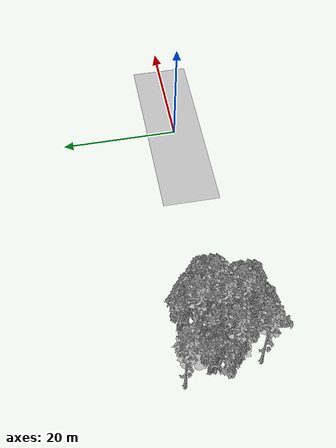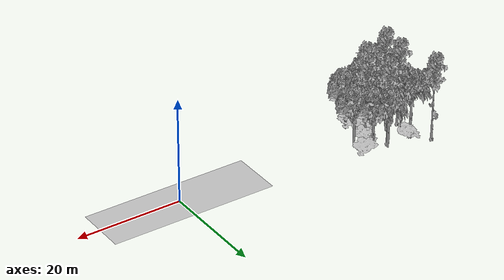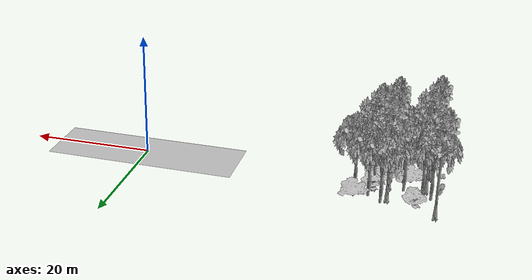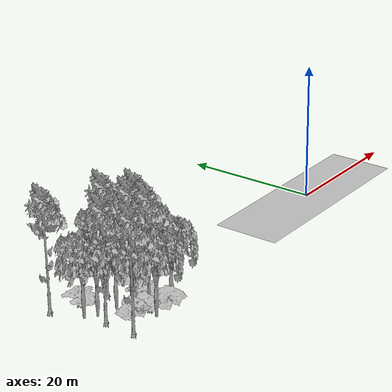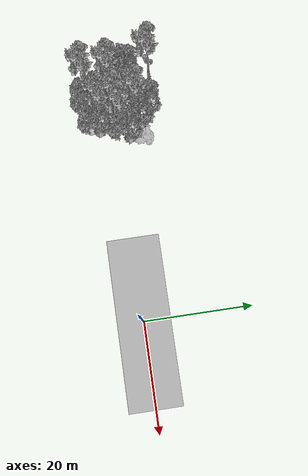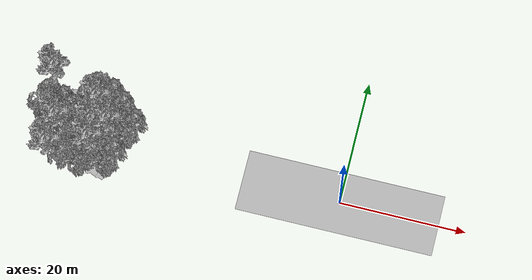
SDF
<sdf version="1.7">
 <world name="default">
  <model name="ground_plane">
   <static>1</static>
   <link name="link">
    <collision name="collision">
     <pose>-50 0 0 0 -0 0</pose>
     <geometry><plane><normal>0 0 1</normal><size>100 100</size></plane></geometry>
     <surface><contact><ode><min_depth>0.01</min_depth><max_vel>0</max_vel></ode></contact></surface>
    </collision>
    <visual name="grass">
     <cast_shadows>0</cast_shadows>
     <geometry>
      <mesh>
       <scale>0.5814285714285714 0.18142857142857144 0.1</scale>
       <uri>file://grass_plane/meshes/grass_plane.dae</uri>
      </mesh>
     </geometry>
    </visual>
   </link>
  </model>
  <model name="Tree 28">
   <static>1</static>
   <pose>-39.8316958068525 -2.0770529206406376 0 1.57079 -0 0</pose>
   <link name="link">
    <collision name="collision">
     <geometry><mesh><scale>3.5 5 3.5</scale><uri>model://tree_9/meshes/tree_9.obj</uri></mesh></geometry>
    </collision>
    <visual name="visual">
     <geometry><mesh><scale>3.5 5 3.5</scale><uri>model://tree_9/meshes/tree_9.obj</uri></mesh></geometry>
    </visual>
   </link>
  </model>
  <model name="Tree 32">
   <static>1</static>
   <pose>-39.52098686057385 5.791457068551935 0 1.57079 -0 0</pose>
   <link name="link">
    <collision name="collision">
     <geometry><mesh><scale>3.5 5 3.5</scale><uri>model://tree_2/meshes/tree_2.obj</uri></mesh></geometry>
    </collision>
    <visual name="visual">
     <geometry><mesh><scale>3.5 5 3.5</scale><uri>model://tree_2/meshes/tree_2.obj</uri></mesh></geometry>
    </visual>
   </link>
  </model>
  <model name="Tree 34">
   <static>1</static>
   <pose>-38.68039824063031 -0.27357274406901766 0 1.57079 -0 0</pose>
   <link name="link">
    <collision name="collision">
     <geometry><mesh><scale>4 2.5 4</scale><uri>model://tree_1/meshes/tree_1.obj</uri></mesh></geometry>
    </collision>
    <visual name="visual">
     <geometry><mesh><scale>4 2.5 4</scale><uri>model://tree_1/meshes/tree_1.obj</uri></mesh></geometry>
    </visual>
   </link>
  </model>
  <model name="Tree 48">
   <static>1</static>
   <pose>-41.523189170857854 -2.5307352694924248 0 1.57079 -0 0</pose>
   <link name="link">
    <collision name="collision">
     <geometry><mesh><scale>3 2 3</scale><uri>model://tree_3/meshes/tree_3.obj</uri></mesh></geometry>
    </collision>
    <visual name="visual">
     <geometry><mesh><scale>3 2 3</scale><uri>model://tree_3/meshes/tree_3.obj</uri></mesh></geometry>
    </visual>
   </link>
  </model>
  <model name="Tree 70">
   <static>1</static>
   <pose>-37.45991694902705 4.196705679151307 0 1.57079 -0 0</pose>
   <link name="link">
    <collision name="collision">
     <geometry><mesh><scale>3.5 5 3.5</scale><uri>model://tree_2/meshes/tree_2.obj</uri></mesh></geometry>
    </collision>
    <visual name="visual">
     <geometry><mesh><scale>3.5 5 3.5</scale><uri>model://tree_2/meshes/tree_2.obj</uri></mesh></geometry>
    </visual>
   </link>
  </model>
  <model name="Tree 91">
   <static>1</static>
   <pose>-35.03655641516617 1.8498984055786778 0 1.57079 -0 0</pose>
   <link name="link">
    <collision name="collision">
     <geometry><mesh><scale>3.5 5 3.5</scale><uri>model://tree_2/meshes/tree_2.obj</uri></mesh></geometry>
    </collision>
    <visual name="visual">
     <geometry><mesh><scale>3.5 5 3.5</scale><uri>model://tree_2/meshes/tree_2.obj</uri></mesh></geometry>
    </visual>
   </link>
  </model>
  <model name="Tree 131">
   <static>1</static>
   <pose>-37.80168769161449 1.315296811936868 0 1.57079 -0 0</pose>
   <link name="link">
    <collision name="collision">
     <geometry><mesh><scale>3.5 5 3.5</scale><uri>model://tree_9/meshes/tree_9.obj</uri></mesh></geometry>
    </collision>
    <visual name="visual">
     <geometry><mesh><scale>3.5 5 3.5</scale><uri>model://tree_9/meshes/tree_9.obj</uri></mesh></geometry>
    </visual>
   </link>
  </model>
  <model name="Tree 133">
   <static>1</static>
   <pose>-37.78619866772434 1.6802579844869179 0 1.57079 -0 0</pose>
   <link name="link">
    <collision name="collision">
     <geometry><mesh><scale>4 2.5 4</scale><uri>model://tree_1/meshes/tree_1.obj</uri></mesh></geometry>
    </collision>
    <visual name="visual">
     <geometry><mesh><scale>4 2.5 4</scale><uri>model://tree_1/meshes/tree_1.obj</uri></mesh></geometry>
    </visual>
   </link>
  </model>
  <model name="Tree 161">
   <static>1</static>
   <pose>-40.03351332505194 0.6126875188362586 0 1.57079 -0 0</pose>
   <link name="link">
    <collision name="collision">
     <geometry><mesh><scale>3.5 5 3.5</scale><uri>model://tree_9/meshes/tree_9.obj</uri></mesh></geometry>
    </collision>
    <visual name="visual">
     <geometry><mesh><scale>3.5 5 3.5</scale><uri>model://tree_9/meshes/tree_9.obj</uri></mesh></geometry>
    </visual>
   </link>
  </model>
  <model name="Tree 181">
   <static>1</static>
   <pose>-45.63508047353047 0.17504762835524978 0 1.57079 -0 0</pose>
   <link name="link">
    <collision name="collision">
     <geometry><mesh><scale>3.5 5 3.5</scale><uri>model://tree_9/meshes/tree_9.obj</uri></mesh></geometry>
    </collision>
    <visual name="visual">
     <geometry><mesh><scale>3.5 5 3.5</scale><uri>model://tree_9/meshes/tree_9.obj</uri></mesh></geometry>
    </visual>
   </link>
  </model>
  <model name="Tree 194">
   <static>1</static>
   <pose>-45.31039754584546 1.7979524649669614 0 1.57079 -0 0</pose>
   <link name="link">
    <collision name="collision">
     <geometry><mesh><scale>3.5 5 3.5</scale><uri>model://tree_2/meshes/tree_2.obj</uri></mesh></geometry>
    </collision>
    <visual name="visual">
     <geometry><mesh><scale>3.5 5 3.5</scale><uri>model://tree_2/meshes/tree_2.obj</uri></mesh></geometry>
    </visual>
   </link>
  </model>
  <model name="Tree 201">
   <static>1</static>
   <pose>-40.227225672328906 4.487821520263605 0 1.57079 -0 0</pose>
   <link name="link">
    <collision name="collision">
     <geometry><mesh><scale>3.5 5 3.5</scale><uri>model://tree_9/meshes/tree_9.obj</uri></mesh></geometry>
    </collision>
    <visual name="visual">
     <geometry><mesh><scale>3.5 5 3.5</scale><uri>model://tree_9/meshes/tree_9.obj</uri></mesh></geometry>
    </visual>
   </link>
  </model>
  <model name="Tree 202">
   <static>1</static>
   <pose>-41.15054442785672 -4.18944300722249 0 1.57079 -0 0</pose>
   <link name="link">
    <collision name="collision">
     <geometry><mesh><scale>3.5 5 3.5</scale><uri>model://tree_2/meshes/tree_2.obj</uri></mesh></geometry>
    </collision>
    <visual name="visual">
     <geometry><mesh><scale>3.5 5 3.5</scale><uri>model://tree_2/meshes/tree_2.obj</uri></mesh></geometry>
    </visual>
   </link>
  </model>
  <model name="Tree 358">
   <static>1</static>
   <pose>-44.5224142309047 5.303659520229299 0 1.57079 -0 0</pose>
   <link name="link">
    <collision name="collision">
     <geometry><mesh><scale>4 2.5 4</scale><uri>model://tree_1/meshes/tree_1.obj</uri></mesh></geometry>
    </collision>
    <visual name="visual">
     <geometry><mesh><scale>4 2.5 4</scale><uri>model://tree_1/meshes/tree_1.obj</uri></mesh></geometry>
    </visual>
   </link>
  </model>
  <model name="Tree 397">
   <static>1</static>
   <pose>-43.04464934743676 -2.095648748263045 0 1.57079 -0 0</pose>
   <link name="link">
    <collision name="collision">
     <geometry><mesh><scale>3 2 3</scale><uri>model://tree_3/meshes/tree_3.obj</uri></mesh></geometry>
    </collision>
    <visual name="visual">
     <geometry><mesh><scale>3 2 3</scale><uri>model://tree_3/meshes/tree_3.obj</uri></mesh></geometry>
    </visual>
   </link>
  </model>
  <model name="Tree 400">
   <static>1</static>
   <pose>-46.679869658411356 2.8533812270009378 0 1.57079 -0 0</pose>
   <link name="link">
    <collision name="collision">
     <geometry><mesh><scale>3.5 5 3.5</scale><uri>model://tree_2/meshes/tree_2.obj</uri></mesh></geometry>
    </collision>
    <visual name="visual">
     <geometry><mesh><scale>3.5 5 3.5</scale><uri>model://tree_2/meshes/tree_2.obj</uri></mesh></geometry>
    </visual>
   </link>
  </model>
  <model name="Tree 401">
   <static>1</static>
   <pose>-36.94971651201166 -3.3201957891886895 0 1.57079 -0 0</pose>
   <link name="link">
    <collision name="collision">
     <geometry><mesh><scale>3.5 5 3.5</scale><uri>model://tree_2/meshes/tree_2.obj</uri></mesh></geometry>
    </collision>
    <visual name="visual">
     <geometry><mesh><scale>3.5 5 3.5</scale><uri>model://tree_2/meshes/tree_2.obj</uri></mesh></geometry>
    </visual>
   </link>
  </model>
  <model name="Tree 419">
   <static>1</static>
   <pose>-45.78433155488902 -4.307275897563727 0 1.57079 -0 0</pose>
   <link name="link">
    <collision name="collision">
     <geometry><mesh><scale>3.5 5 3.5</scale><uri>model://tree_9/meshes/tree_9.obj</uri></mesh></geometry>
    </collision>
    <visual name="visual">
     <geometry><mesh><scale>3.5 5 3.5</scale><uri>model://tree_9/meshes/tree_9.obj</uri></mesh></geometry>
    </visual>
   </link>
  </model>
  <model name="Tree 467">
   <static>1</static>
   <pose>-35.20399750912631 4.7608589076049626 0 1.57079 -0 0</pose>
   <link name="link">
    <collision name="collision">
     <geometry><mesh><scale>3 2 3</scale><uri>model://tree_3/meshes/tree_3.obj</uri></mesh></geometry>
    </collision>
    <visual name="visual">
     <geometry><mesh><scale>3 2 3</scale><uri>model://tree_3/meshes/tree_3.obj</uri></mesh></geometry>
    </visual>
   </link>
  </model>
  <model name="Tree 480">
   <static>1</static>
   <pose>-42.03837930322169 -1.5479854462549767 0 1.57079 -0 0</pose>
   <link name="link">
    <collision name="collision">
     <geometry><mesh><scale>3.5 5 3.5</scale><uri>model://tree_2/meshes/tree_2.obj</uri></mesh></geometry>
    </collision>
    <visual name="visual">
     <geometry><mesh><scale>3.5 5 3.5</scale><uri>model://tree_2/meshes/tree_2.obj</uri></mesh></geometry>
    </visual>
   </link>
  </model>
  <model name="Tree 507">
   <static>1</static>
   <pose>-38.283254428796155 -4.081532004060355 0 1.57079 -0 0</pose>
   <link name="link">
    <collision name="collision">
     <geometry><mesh><scale>3 2 3</scale><uri>model://tree_3/meshes/tree_3.obj</uri></mesh></geometry>
    </collision>
    <visual name="visual">
     <geometry><mesh><scale>3 2 3</scale><uri>model://tree_3/meshes/tree_3.obj</uri></mesh></geometry>
    </visual>
   </link>
  </model>
  <model name="Tree 517">
   <static>1</static>
   <pose>-42.43269241658862 1.164289011919582 0 1.57079 -0 0</pose>
   <link name="link">
    <collision name="collision">
     <geometry><mesh><scale>3.5 5 3.5</scale><uri>model://tree_2/meshes/tree_2.obj</uri></mesh></geometry>
    </collision>
    <visual name="visual">
     <geometry><mesh><scale>3.5 5 3.5</scale><uri>model://tree_2/meshes/tree_2.obj</uri></mesh></geometry>
    </visual>
   </link>
  </model>
  <model name="Tree 538">
   <static>1</static>
   <pose>-47.65463250716142 7.612069493423068 0 1.57079 -0 0</pose>
   <link name="link">
    <collision name="collision">
     <geometry><mesh><scale>3.5 5 3.5</scale><uri>model://tree_9/meshes/tree_9.obj</uri></mesh></geometry>
    </collision>
    <visual name="visual">
     <geometry><mesh><scale>3.5 5 3.5</scale><uri>model://tree_9/meshes/tree_9.obj</uri></mesh></geometry>
    </visual>
   </link>
  </model>
 </world>
</sdf>
